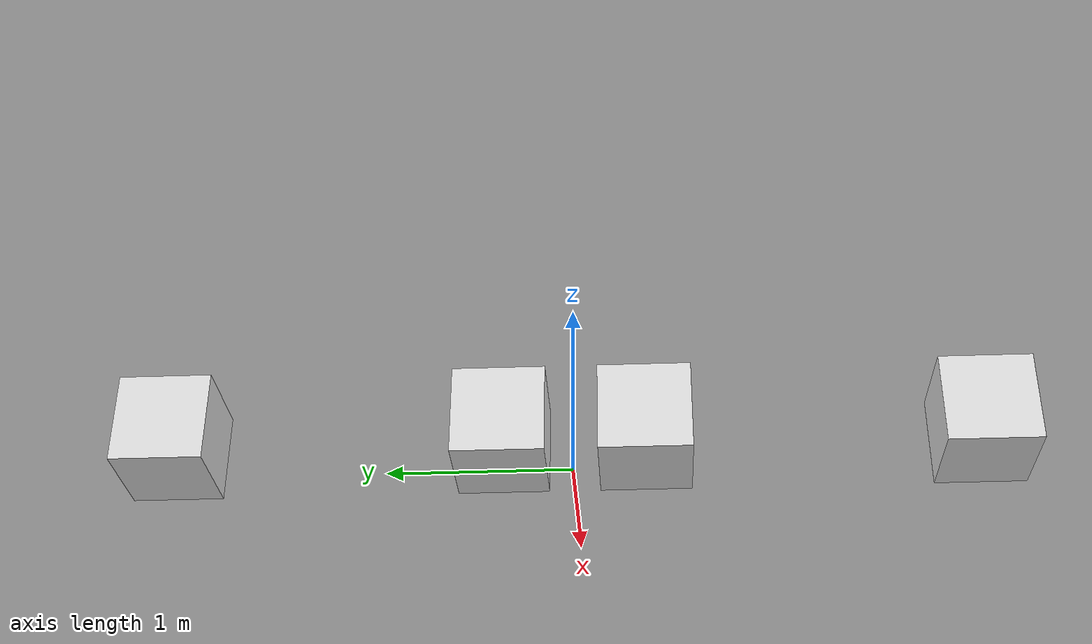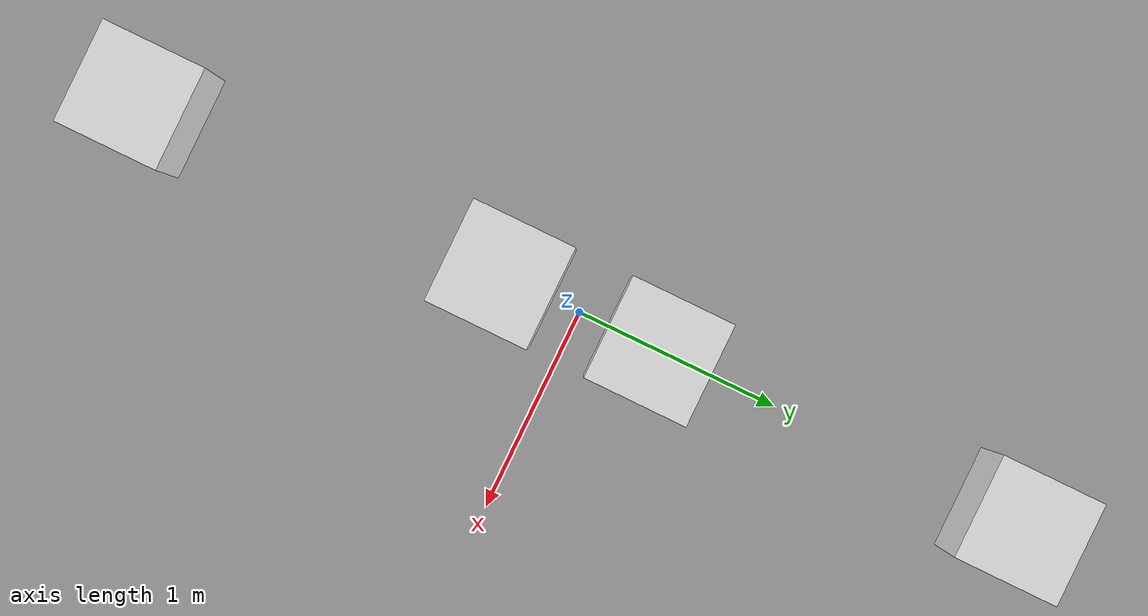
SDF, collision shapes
<?xml version="1.0" ?>
<sdf version="1.6">
  <model name="trap_discr_2_ubias">
    <static>false</static>
    <include>
      <name>attract_cue_0</name>
      <uri>model://vis_cue_attract</uri>
      <pose>0 -2.2 0.25 0 0 0</pose>
    </include>
    <include>
      <name>attract_cue_1</name>
      <uri>model://vis_cue_attract</uri>
      <pose>0 -0.39 0.25 0 0 0</pose>
    </include>
    <include>
      <name>repel_cue_2</name>
      <uri>model://vis_cue_repel</uri>
      <pose>0 2.2 0.25 0 0 0</pose>
    </include>
    <include>
      <name>repel_cue_3</name>
      <uri>model://vis_cue_repel</uri>
      <pose>0 0.39 0.25 0 0 0</pose>
    </include>
  </model>
</sdf>

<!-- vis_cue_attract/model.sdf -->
<sdf version="1.6">
  <model name="vis_cue_attract">
    <static>false</static>
    <pose>0 0 0.25 0 0 0</pose>
    <link name='vis_cue_attract'>
      <inertial>
        <mass>1</mass>
        <inertia>
          <ixx>0.166667</ixx>
          <ixy>0</ixy>
          <ixz>0</ixz>
          <iyy>0.166667</iyy>
          <iyz>0</iyz>
          <izz>0.166667</izz>
        </inertia>
      </inertial>
      <collision name='collision'>
        <geometry>
          <box>
            <size>0.5 0.5 0.5</size>
          </box>
        </geometry>
        <max_contacts>10</max_contacts>
        <surface>
          <contact>
            <ode/>
          </contact>
          <bounce/>
          <friction>
            <torsional>
              <ode/>
            </torsional>
            <ode/>
          </friction>
        </surface>
      </collision>
      <visual name='box_visual'>
        <geometry>
          <box>
            <size>0.5 0.5 0.5</size>
          </box>
        </geometry>
        <material>
          <ambient>0.85 0.85 0.85 1</ambient>
          <diffuse>0.85 0.85 0.85 1</diffuse>
          <specular>0.15 0.15 0.15 1</specular>
          <emissive>0 0 0 0</emissive>
        </material>
      </visual>
      <visual name='cue_visual'>
        <geometry>
          <mesh>
            <uri>model://vis_cue_attract/meshes/sphere.stl</uri>
            <scale>0.9 0.9 0.9</scale>
          </mesh>
        </geometry>
        <material>
          <ambient>0 1 0 0.10</ambient>
          <diffuse>0 1 0 0.20</diffuse>
          <specular>0 1 0 0.20</specular>
          <emissive>0 1 0 0.1</emissive>
        </material>
      </visual>
      <self_collide>0</self_collide>
      <kinematic>0</kinematic>
    </link>
  </model>
</sdf>

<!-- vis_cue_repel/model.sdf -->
<sdf version="1.6">
  <model name="vis_cue_repel">
    <static>false</static>
    <pose>0 0 0.25 0 0 0</pose>
    <link name='vis_cue_repel'>
      <inertial>
        <mass>1</mass>
        <inertia>
          <ixx>0.166667</ixx>
          <ixy>0</ixy>
          <ixz>0</ixz>
          <iyy>0.166667</iyy>
          <iyz>0</iyz>
          <izz>0.166667</izz>
        </inertia>
      </inertial>
      <collision name='collision'>
        <geometry>
          <box>
            <size>0.5 0.5 0.5</size>
          </box>
        </geometry>
        <max_contacts>10</max_contacts>
        <surface>
          <contact>
            <ode/>
          </contact>
          <bounce/>
          <friction>
            <torsional>
              <ode/>
            </torsional>
            <ode/>
          </friction>
        </surface>
      </collision>
      <visual name='box_visual'>
        <geometry>
          <box>
            <size>0.5 0.5 0.5</size>
          </box>
        </geometry>
        <material>
          <ambient>0.85 0.85 0.85 1</ambient>
          <diffuse>0.85 0.85 0.85 1</diffuse>
          <specular>0.15 0.15 0.15 1</specular>
          <emissive>0 0 0 0</emissive>
        </material>
      </visual>
      <visual name='cue_visual_1'>
        <pose>0 0 0 1.5708 0 1.5708</pose>
        <geometry>
          <mesh>
            <uri>model://vis_cue_repel/meshes/repelling_cue.stl</uri>
            <scale>0.36 0.36 0.36</scale>
          </mesh>
        </geometry>
        <material>
          <ambient>1 0.3 0.2 0.6</ambient>
          <diffuse>1 0.3 0.2 0.6</diffuse>
          <specular>1 0.3 0.2 0.7</specular>
          <emissive>0.5 0 0 0.1</emissive>
        </material>
      </visual>
      <visual name='cue_visual_2'>
        <pose>0 0 0 1.5708 0 0</pose>
        <geometry>
          <mesh>
            <uri>model://vis_cue_repel/meshes/repelling_cue.stl</uri>
            <scale>0.36 0.36 0.36</scale>
          </mesh>
        </geometry>
        <material>
          <ambient>1 0.3 0.2 0.6</ambient>
          <diffuse>1 0.3 0.2 0.6</diffuse>
          <specular>1 0.3 0.2 0.7</specular>
          <emissive>0.5 0 0 0.1</emissive>
        </material>
      </visual>
      <visual name='cue_visual_3'>
        <pose>0 0 0 0 0 0</pose>
        <geometry>
          <mesh>
            <uri>model://vis_cue_repel/meshes/repelling_cue.stl</uri>
            <scale>0.36 0.36 0.36</scale>
          </mesh>
        </geometry>
        <material>
          <ambient>1 0.3 0.2 0.6</ambient>
          <diffuse>1 0.3 0.2 0.6</diffuse>
          <specular>1 0.3 0.2 0.7</specular>
          <emissive>0.5 0 0 0.1</emissive>
        </material>
      </visual>
      <self_collide>0</self_collide>
      <kinematic>0</kinematic>
    </link>
  </model>
</sdf>
